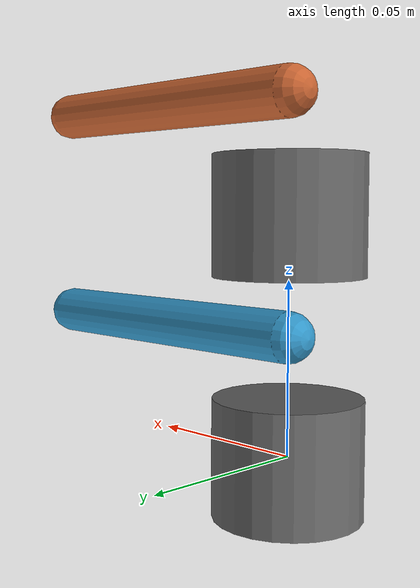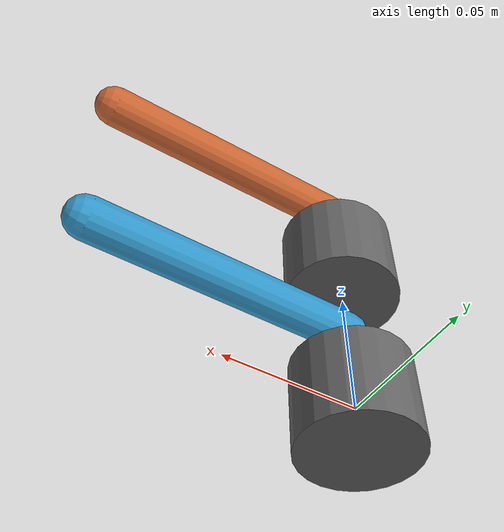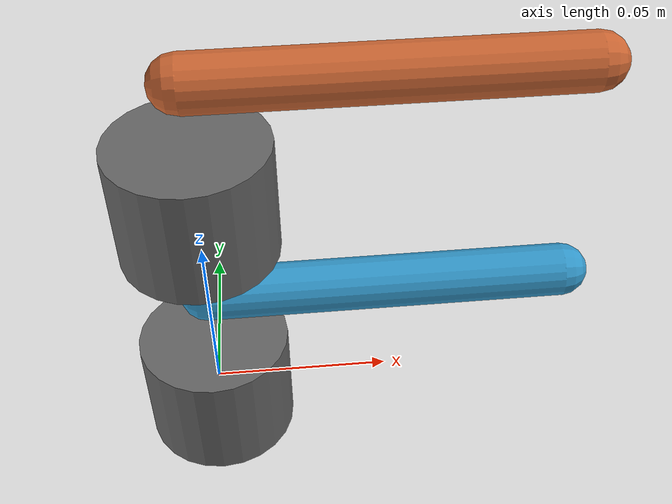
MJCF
<mujoco model="xl430_arm">
  <compiler angle="degree" coordinate="local"/>
  <option timestep="0.002"/>

  <worldbody>
    <!-- Base servo mounted on table -->
    <body name="base" pos="0 0 0">
      <!-- XL430 servo body -->
      <geom name="base_servo" type="cylinder" size="0.0215 0.017" rgba="0.4 0.4 0.4 1"/>

      <!-- Shoulder joint (rotates around Z) -->
      <joint name="shoulder" type="hinge" axis="0 0 1" pos="0 0 0" range="-150 150"/>

      <!-- First Link -->
      <body name="link1" pos="0.0 0.0 0.034"> <!-- Lifted above motor -->
        <geom type="capsule" fromto="0 0 0 0.1 0 0" size="0.0075" rgba="0.2 0.6 0.8 1"/>

        <!-- Elbow servo -->
        <body name="elbow_servo" pos="0.0 0.0 0.034">
          <geom name="elbow_servo_geom" type="cylinder" size="0.0215 0.017" rgba="0.4 0.4 0.4 1"/>
          <joint name="elbow" type="hinge" axis="0 1 0" pos="0 0 0" range="-150 150"/>

          <!-- Second Link -->
          <body name="link2" pos="0 0 0.034">
            <geom type="capsule" fromto="0 0 0 0.1 0 0" size="0.0075" rgba="0.8 0.4 0.2 1"/>
            <site name="ee_site" pos="0.1 0 0" size="0.005" rgba="1 0 0 1"/>
          </body>
        </body>
      </body>
    </body>
  </worldbody>

  <actuator>
    <position joint="shoulder" kp="20"/>
    <position joint="elbow" kp="20"/>
  </actuator>
</mujoco>
